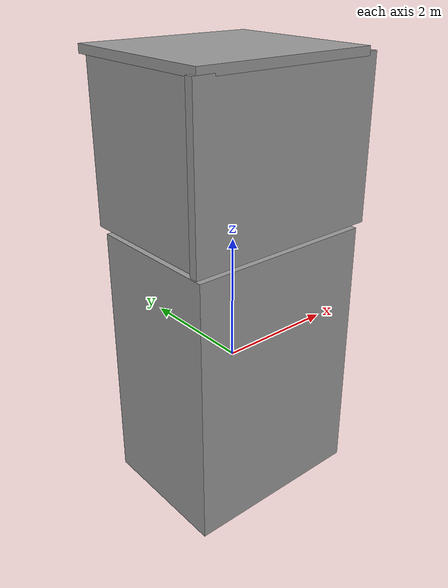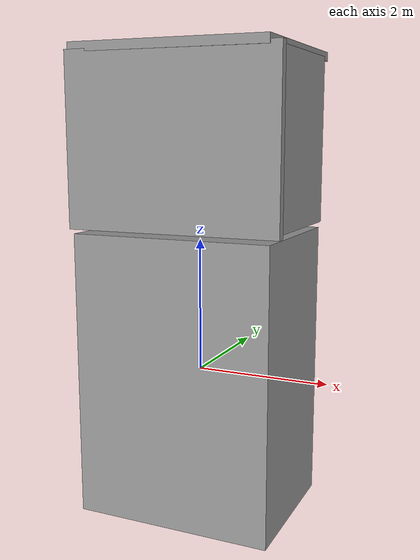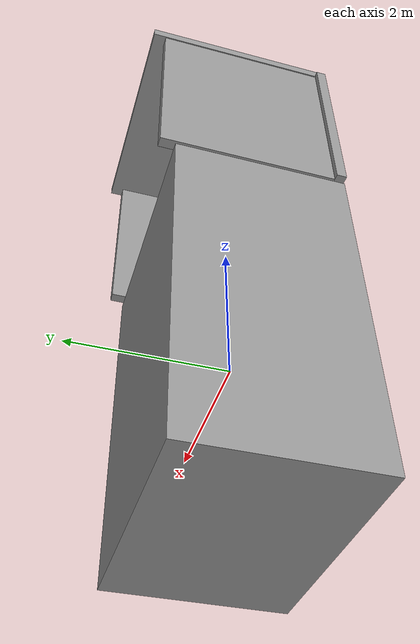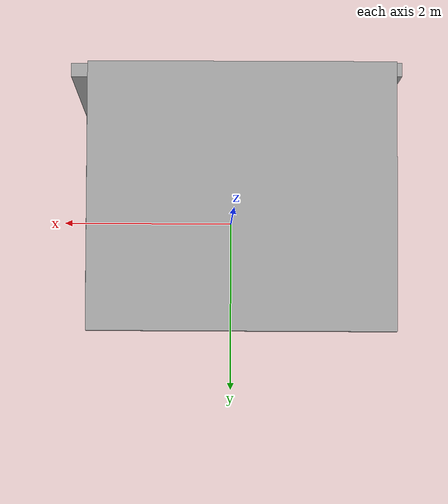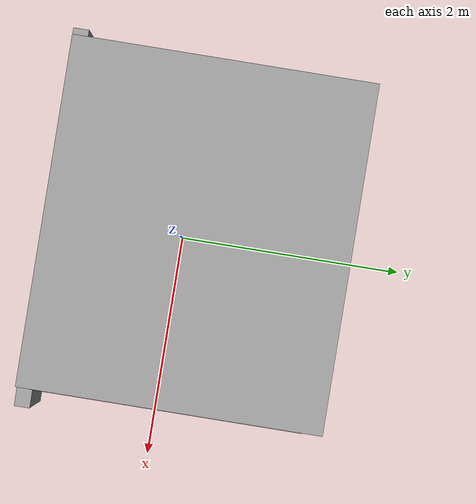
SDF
<?xml version='1.0'?>
<sdf version='1.7'>
  <model name='beranda'>
    <link name='link'>
      <inertial>
        <mass>28.4157</mass>
        <inertia>
          <ixx>55.0432</ixx>
          <ixy>0</ixy>
          <ixz>0</ixz>
          <iyy>64.5923</iyy>
          <iyz>0</iyz>
          <izz>32.8556</izz>
        </inertia>
        <pose>0 0 0 0 -0 0</pose>
      </inertial>
      <self_collide>0</self_collide>
      <enable_wind>0</enable_wind>
      <kinematic>0</kinematic>
      <pose>0 0 0 0 -0 0</pose>
      <visual name='visual'>
        <geometry>
          <box>
            <size>2.99229 2.21838 4.28062</size>
          </box>
        </geometry>
        <material>
          <script>
            <name>Gazebo/Grey</name>
            <uri>file://media/materials/scripts/gazebo.material</uri>
          </script>
          <shader type='pixel'/>
        </material>
        <pose>0 0 0 0 -0 0</pose>
        <transparency>0</transparency>
        <cast_shadows>1</cast_shadows>
      </visual>
      <collision name='collision'>
        <laser_retro>0</laser_retro>
        <max_contacts>10</max_contacts>
        <pose>0 0 0 0 -0 0</pose>
        <geometry>
          <box>
            <size>2.99229 2.21838 4.28062</size>
          </box>
        </geometry>
        <surface>
          <friction>
            <ode>
              <mu>1</mu>
              <mu2>1</mu2>
              <fdir1>0 0 0</fdir1>
              <slip1>0</slip1>
              <slip2>0</slip2>
            </ode>
            <torsional>
              <coefficient>1</coefficient>
              <patch_radius>0</patch_radius>
              <surface_radius>0</surface_radius>
              <use_patch_radius>1</use_patch_radius>
              <ode>
                <slip>0</slip>
              </ode>
            </torsional>
          </friction>
          <bounce>
            <restitution_coefficient>0</restitution_coefficient>
            <threshold>1e+06</threshold>
          </bounce>
          <contact>
            <collide_without_contact>0</collide_without_contact>
            <collide_without_contact_bitmask>1</collide_without_contact_bitmask>
            <collide_bitmask>1</collide_bitmask>
            <ode>
              <soft_cfm>0</soft_cfm>
              <soft_erp>0.2</soft_erp>
              <kp>1e+13</kp>
              <kd>1</kd>
              <max_vel>0.01</max_vel>
              <min_depth>0</min_depth>
            </ode>
            <bullet>
              <split_impulse>1</split_impulse>
              <split_impulse_penetration_threshold>-0.01</split_impulse_penetration_threshold>
              <soft_cfm>0</soft_cfm>
              <soft_erp>0.2</soft_erp>
              <kp>1e+13</kp>
              <kd>1</kd>
            </bullet>
          </contact>
        </surface>
      </collision>
    </link>
    <link name='link_1_clone'>
      <inertial>
        <mass>0.753276</mass>
        <inertia>
          <ixx>0.719659</ixx>
          <ixy>0</ixy>
          <ixz>0</ixz>
          <iyy>0.391721</iyy>
          <iyz>0</iyz>
          <izz>0.330122</izz>
        </inertia>
        <pose>0 0 0 0 -0 0</pose>
      </inertial>
      <pose>1.40691 0.148816 3.45179 -2e-05 0 0</pose>
      <visual name='visual'>
        <pose>0 0 0 0 -0 0</pose>
        <geometry>
          <box>
            <size>0.131896 2.28945 2.49457</size>
          </box>
        </geometry>
        <material>
          <lighting>1</lighting>
          <script>
            <uri>file://media/materials/scripts/gazebo.material</uri>
            <name>Gazebo/Grey</name>
          </script>
          <shader type='pixel'/>
        </material>
        <transparency>0</transparency>
        <cast_shadows>1</cast_shadows>
      </visual>
      <collision name='collision'>
        <laser_retro>0</laser_retro>
        <max_contacts>10</max_contacts>
        <pose>0 0 0 0 -0 0</pose>
        <geometry>
          <box>
            <size>0.131896 2.28945 2.49457</size>
          </box>
        </geometry>
        <surface>
          <friction>
            <ode>
              <mu>1</mu>
              <mu2>1</mu2>
              <fdir1>0 0 0</fdir1>
              <slip1>0</slip1>
              <slip2>0</slip2>
            </ode>
            <torsional>
              <coefficient>1</coefficient>
              <patch_radius>0</patch_radius>
              <surface_radius>0</surface_radius>
              <use_patch_radius>1</use_patch_radius>
              <ode>
                <slip>0</slip>
              </ode>
            </torsional>
          </friction>
          <bounce>
            <restitution_coefficient>0</restitution_coefficient>
            <threshold>1e+06</threshold>
          </bounce>
          <contact>
            <collide_without_contact>0</collide_without_contact>
            <collide_without_contact_bitmask>1</collide_without_contact_bitmask>
            <collide_bitmask>1</collide_bitmask>
            <ode>
              <soft_cfm>0</soft_cfm>
              <soft_erp>0.2</soft_erp>
              <kp>1e+13</kp>
              <kd>1</kd>
              <max_vel>0.01</max_vel>
              <min_depth>0</min_depth>
            </ode>
            <bullet>
              <split_impulse>1</split_impulse>
              <split_impulse_penetration_threshold>-0.01</split_impulse_penetration_threshold>
              <soft_cfm>0</soft_cfm>
              <soft_erp>0.2</soft_erp>
              <kp>1e+13</kp>
              <kd>1</kd>
            </bullet>
          </contact>
        </surface>
      </collision>
    </link>
    <link name='link_1_clone_clone'>
      <inertial>
        <mass>0.753276</mass>
        <inertia>
          <ixx>0.719659</ixx>
          <ixy>0</ixy>
          <ixz>0</ixz>
          <iyy>0.391721</iyy>
          <iyz>0</iyz>
          <izz>0.330122</izz>
        </inertia>
        <pose>0 0 0 0 -0 0</pose>
      </inertial>
      <pose>-1.41986 0.154405 3.45179 -3e-05 0 0</pose>
      <visual name='visual'>
        <pose>0 0 0 0 -0 0</pose>
        <geometry>
          <box>
            <size>0.131896 2.28945 2.49457</size>
          </box>
        </geometry>
        <material>
          <lighting>1</lighting>
          <script>
            <uri>file://media/materials/scripts/gazebo.material</uri>
            <name>Gazebo/Grey</name>
          </script>
          <shader type='pixel'/>
        </material>
        <transparency>0</transparency>
        <cast_shadows>1</cast_shadows>
      </visual>
      <collision name='collision'>
        <laser_retro>0</laser_retro>
        <max_contacts>10</max_contacts>
        <pose>0 0 0 0 -0 0</pose>
        <geometry>
          <box>
            <size>0.131896 2.28945 2.49457</size>
          </box>
        </geometry>
        <surface>
          <friction>
            <ode>
              <mu>1</mu>
              <mu2>1</mu2>
              <fdir1>0 0 0</fdir1>
              <slip1>0</slip1>
              <slip2>0</slip2>
            </ode>
            <torsional>
              <coefficient>1</coefficient>
              <patch_radius>0</patch_radius>
              <surface_radius>0</surface_radius>
              <use_patch_radius>1</use_patch_radius>
              <ode>
                <slip>0</slip>
              </ode>
            </torsional>
          </friction>
          <bounce>
            <restitution_coefficient>0</restitution_coefficient>
            <threshold>1e+06</threshold>
          </bounce>
          <contact>
            <collide_without_contact>0</collide_without_contact>
            <collide_without_contact_bitmask>1</collide_without_contact_bitmask>
            <collide_bitmask>1</collide_bitmask>
            <ode>
              <soft_cfm>0</soft_cfm>
              <soft_erp>0.2</soft_erp>
              <kp>1e+13</kp>
              <kd>1</kd>
              <max_vel>0.01</max_vel>
              <min_depth>0</min_depth>
            </ode>
            <bullet>
              <split_impulse>1</split_impulse>
              <split_impulse_penetration_threshold>-0.01</split_impulse_penetration_threshold>
              <soft_cfm>0</soft_cfm>
              <soft_erp>0.2</soft_erp>
              <kp>1e+13</kp>
              <kd>1</kd>
            </bullet>
          </contact>
        </surface>
      </collision>
    </link>
    <link name='link_1_clone_clone_0'>
      <inertial>
        <mass>1.04779</mass>
        <inertia>
          <ixx>1.42887</ixx>
          <ixy>0</ixy>
          <ixz>0</ixz>
          <iyy>0.544876</iyy>
          <iyz>0</iyz>
          <izz>0.887034</izz>
        </inertia>
        <pose>0 0 0 0 -0 0</pose>
      </inertial>
      <pose>0.0342 -1.04998 3.45181 0 -3e-05 -1.56616</pose>
      <visual name='visual'>
        <pose>0 0 0 0 -0 0</pose>
        <geometry>
          <box>
            <size>0.131896 3.18457 2.49457</size>
          </box>
        </geometry>
        <material>
          <lighting>1</lighting>
          <script>
            <uri>file://media/materials/scripts/gazebo.material</uri>
            <name>Gazebo/Grey</name>
          </script>
          <shader type='pixel'/>
        </material>
        <transparency>0</transparency>
        <cast_shadows>1</cast_shadows>
      </visual>
      <collision name='collision'>
        <laser_retro>0</laser_retro>
        <max_contacts>10</max_contacts>
        <pose>0 0 0 0 -0 0</pose>
        <geometry>
          <box>
            <size>0.131896 3.18457 2.49457</size>
          </box>
        </geometry>
        <surface>
          <friction>
            <ode>
              <mu>1</mu>
              <mu2>1</mu2>
              <fdir1>0 0 0</fdir1>
              <slip1>0</slip1>
              <slip2>0</slip2>
            </ode>
            <torsional>
              <coefficient>1</coefficient>
              <patch_radius>0</patch_radius>
              <surface_radius>0</surface_radius>
              <use_patch_radius>1</use_patch_radius>
              <ode>
                <slip>0</slip>
              </ode>
            </torsional>
          </friction>
          <bounce>
            <restitution_coefficient>0</restitution_coefficient>
            <threshold>1e+06</threshold>
          </bounce>
          <contact>
            <collide_without_contact>0</collide_without_contact>
            <collide_without_contact_bitmask>1</collide_without_contact_bitmask>
            <collide_bitmask>1</collide_bitmask>
            <ode>
              <soft_cfm>0</soft_cfm>
              <soft_erp>0.2</soft_erp>
              <kp>1e+13</kp>
              <kd>1</kd>
              <max_vel>0.01</max_vel>
              <min_depth>0</min_depth>
            </ode>
            <bullet>
              <split_impulse>1</split_impulse>
              <split_impulse_penetration_threshold>-0.01</split_impulse_penetration_threshold>
              <soft_cfm>0</soft_cfm>
              <soft_erp>0.2</soft_erp>
              <kp>1e+13</kp>
              <kd>1</kd>
            </bullet>
          </contact>
        </surface>
      </collision>
    </link>
    <link name='link_1_clone_clone_clone'>
      <inertial>
        <mass>1.01217</mass>
        <inertia>
          <ixx>1.30678</ixx>
          <ixy>0</ixy>
          <ixz>0</ixz>
          <iyy>0.743954</iyy>
          <iyz>0</iyz>
          <izz>0.565762</izz>
        </inertia>
        <pose>0 0 0 0 -0 0</pose>
      </inertial>
      <pose>-0.016644 0.171537 4.72024 -0.004889 -1.56266 0.004889</pose>
      <visual name='visual'>
        <pose>0 0 0 0 -0 0</pose>
        <geometry>
          <box>
            <size>0.131896 2.58652 2.96693</size>
          </box>
        </geometry>
        <material>
          <lighting>1</lighting>
          <script>
            <uri>file://media/materials/scripts/gazebo.material</uri>
            <name>Gazebo/Grey</name>
          </script>
          <shader type='pixel'/>
        </material>
        <transparency>0</transparency>
        <cast_shadows>1</cast_shadows>
      </visual>
      <collision name='collision'>
        <laser_retro>0</laser_retro>
        <max_contacts>10</max_contacts>
        <pose>0 0 0 0 -0 0</pose>
        <geometry>
          <box>
            <size>0.131896 2.58652 2.96693</size>
          </box>
        </geometry>
        <surface>
          <friction>
            <ode>
              <mu>1</mu>
              <mu2>1</mu2>
              <fdir1>0 0 0</fdir1>
              <slip1>0</slip1>
              <slip2>0</slip2>
            </ode>
            <torsional>
              <coefficient>1</coefficient>
              <patch_radius>0</patch_radius>
              <surface_radius>0</surface_radius>
              <use_patch_radius>1</use_patch_radius>
              <ode>
                <slip>0</slip>
              </ode>
            </torsional>
          </friction>
          <bounce>
            <restitution_coefficient>0</restitution_coefficient>
            <threshold>1e+06</threshold>
          </bounce>
          <contact>
            <collide_without_contact>0</collide_without_contact>
            <collide_without_contact_bitmask>1</collide_without_contact_bitmask>
            <collide_bitmask>1</collide_bitmask>
            <ode>
              <soft_cfm>0</soft_cfm>
              <soft_erp>0.2</soft_erp>
              <kp>1e+13</kp>
              <kd>1</kd>
              <max_vel>0.01</max_vel>
              <min_depth>0</min_depth>
            </ode>
            <bullet>
              <split_impulse>1</split_impulse>
              <split_impulse_penetration_threshold>-0.01</split_impulse_penetration_threshold>
              <soft_cfm>0</soft_cfm>
              <soft_erp>0.2</soft_erp>
              <kp>1e+13</kp>
              <kd>1</kd>
            </bullet>
          </contact>
        </surface>
      </collision>
    </link>
    <model name='aruco'>
      <link name='link'>
        <gravity>0</gravity>
        <pose>0 0 0 0 -0 0</pose>
        <visual name='visual'>
          <geometry>
            <box>
              <size>2 2 0.03</size>
            </box>
          </geometry>
          <material>
            <script>
              <uri>model://aruco/materials/scripts</uri>
              <uri>model://aruco/materials/textures</uri>
              <name>aruco/Diffuse</name>
            </script>
          </material>
        </visual>
      </link>
      <pose>-0.066443 -0.956787 3.45208 -1.56383 0 0</pose>
    </model>
    <static>0</static>
    <allow_auto_disable>1</allow_auto_disable>
  </model>
</sdf>
